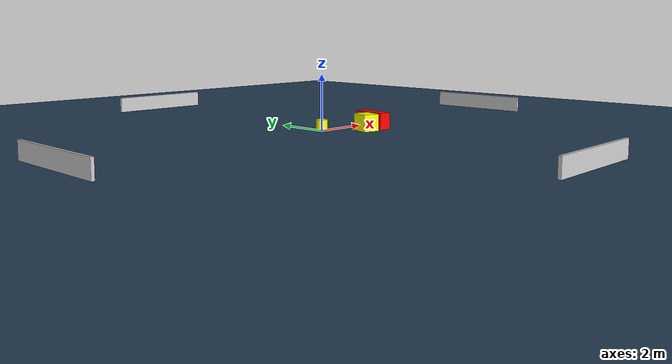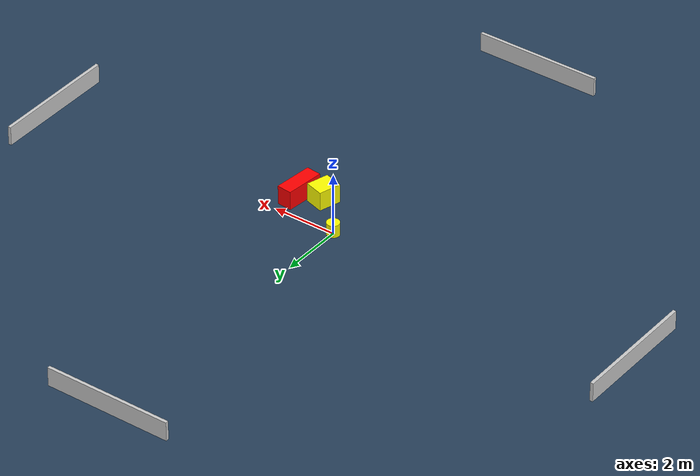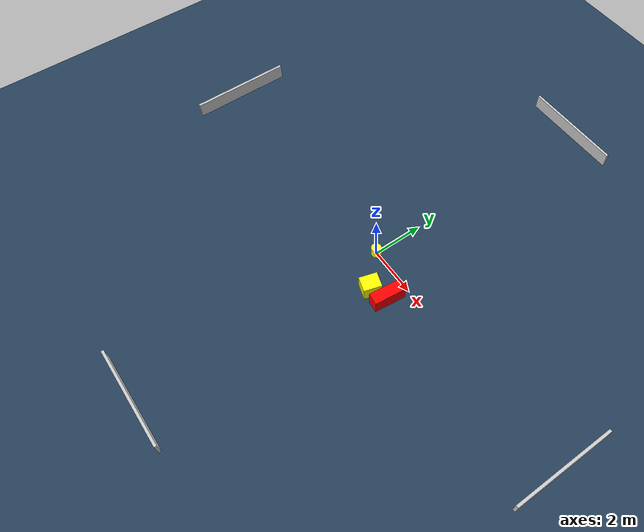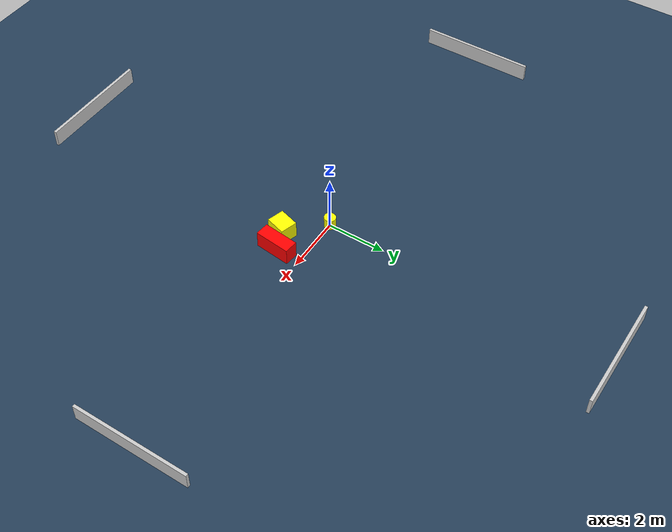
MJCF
<?xml version="1.0" ?>
<mujoco model="generated_environment">
  <option timestep="0.01" integrator="RK4" cone="elliptic"/>
  <default>
    <geom density="1"/>
  </default>
  <asset>
    <texture builtin="gradient" height="3072" name="skybox" rgb1="0.3 0.5 0.7" rgb2="0 0 0" type="skybox" width="512"/>
    <texture builtin="checker" height="300" name="groundplane" rgb1="0.2 0.3 0.4" rgb2="0.1 0.2 0.3" type="2d" width="300"/>
    <material name="groundplane" reflectance="0.2" texrepeat="5 5" texture="groundplane"/>
  </asset>
  <worldbody>
    <light dir="0 0 -1" directional="true" pos="0 0 1.5"/>
    <geom condim="3" friction="0.5 0.005 0.001" material="groundplane" name="floor" pos="0 0 0" size="0 0 0.05" type="plane"/>
    <body name="walls">
      <geom name="wall_1" condim="4" pos="-10.0 0.0 0.3" rgba="0.800000011920929 0.800000011920929 0.800000011920929 1.0" size="0.05 2.0 0.3" type="box"/>
      <geom name="wall_2" condim="4" pos="10.0 0.0 0.3" rgba="0.800000011920929 0.800000011920929 0.800000011920929 1.0" size="0.05 2.0 0.3" type="box"/>
      <geom name="wall_3" condim="4" pos="0.0 -10.0 0.3" rgba="0.800000011920929 0.800000011920929 0.800000011920929 1.0" size="2.0 0.05 0.3" type="box"/>
      <geom name="wall_4" condim="4" pos="0.0 10.0 0.3" rgba="0.800000011920929 0.800000011920929 0.800000011920929 1.0" size="2.0 0.05 0.3" type="box"/>
    </body>
    <body name="robot">
      <joint name="joint_x" type="slide" pos="0 0 0" axis="1 0 0"/>
      <joint name="joint_y" type="slide" pos="0 0 0" axis="0 1 0"/>
      <geom name="robot" type="cylinder" pos="0.0 0.0 0.2" size="0.2 0.2 0.0" mass="5.0" friction="1.0 0.005 0.0001" condim="4" rgba="1.0 1.0 0.0 1.0"/>
    </body>
    <body name="obstacle_1_movable">
      <geom name="obstacle_1_movable" condim="4" pos="1.1382797416133001 -1.084779598653034 0.3" euler="0 0 73.40785641337143" friction="0.0 0.005 0.001" rgba="1.0 1.0 0.0 1.0" size="0.35017011560787525 0.295787053977102 0.3" type="box" mass="0.1"/>
      <joint type="free"/>
    </body>
    <body name="obstacle_2_static">
      <geom name="obstacle_2_static" condim="4" pos="1.8156844802998657 -0.8342237255262975 0.3" euler="0 0 173.86729016542196" friction="0.0 0.005 0.001" rgba="1.0 0.0 0.0 1.0" size="0.23424874021773273 0.6128335372477678 0.3" type="box"/>
    </body>
  </worldbody>
  <actuator>
    <motor name="actuator_x" joint="joint_x" gear="1" ctrlrange="-1 1"/>
    <motor name="actuator_y" joint="joint_y" gear="1" ctrlrange="-1 1"/>
  </actuator>
</mujoco>
